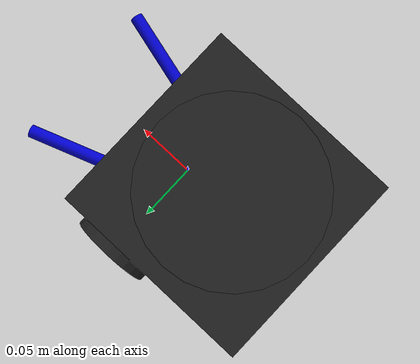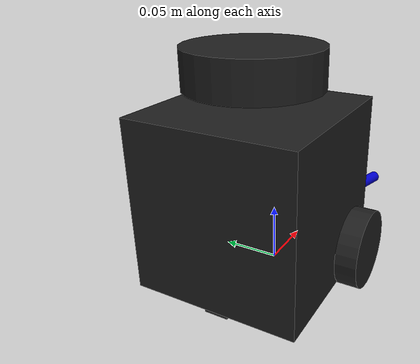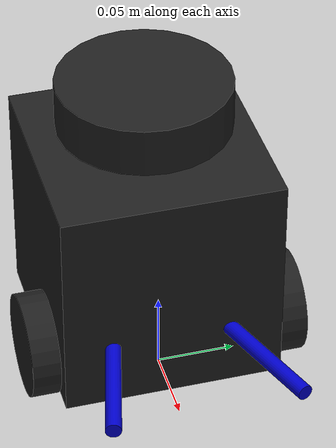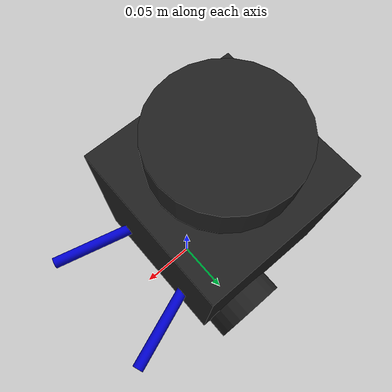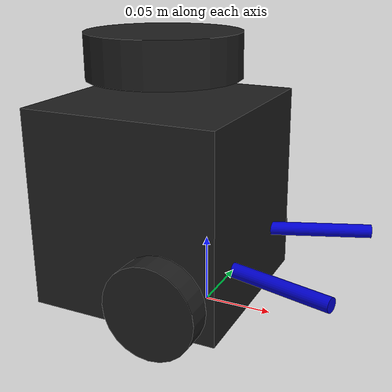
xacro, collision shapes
<?xml version="1.0" ?>
<robot name="turtlebot3_burger" xmlns:xacro="http://ros.org/wiki/xacro">
  <xacro:include filename="$(find turtlebot3_description)/urdf/common_properties.xacro"/>
  <xacro:include filename="$(find turtlebot3_description)/urdf/turtlebot3_burger.gazebo.xacro"/>

  <link name="base_footprint"/>

  <joint name="base_joint" type="fixed">
    <parent link="base_footprint"/>
    <child link="base_link"/>
    <origin xyz="0.0 0.0 0.010" rpy="0 0 0"/>
  </joint>

  <link name="base_link">
    <visual>
      <origin xyz="-0.032 0 0.0" rpy="0 0 0"/>
      <geometry>
        <mesh filename="package://turtlebot3_description/meshes/bases/burger_base.stl" scale="0.001 0.001 0.001"/>
      </geometry>
      <material name="light_black"/>
    </visual>

    <collision>
      <origin xyz="-0.032 0 0.070" rpy="0 0 0"/>
      <geometry>
        <box size="0.140 0.140 0.143"/>
      </geometry>
    </collision>

    <inertial>
      <origin xyz="0 0 0" rpy="0 0 0"/>
      <mass value="8.2573504e-01"/>
      <inertia ixx="2.2124416e-03" ixy="-1.2294101e-05" ixz="3.4938785e-05"
               iyy="2.1193702e-03" iyz="-5.0120904e-06"
               izz="2.0064271e-03" />
    </inertial>
  </link>

  <joint name="wheel_left_joint" type="continuous">
    <parent link="base_link"/>
    <child link="wheel_left_link"/>
    <origin xyz="0.0 0.08 0.023" rpy="-1.57 0 0"/>
    <axis xyz="0 0 1"/>
  </joint>

  <link name="wheel_left_link">
    <visual>
      <origin xyz="0 0 0" rpy="1.57 0 0"/>
      <geometry>
        <mesh filename="package://turtlebot3_description/meshes/wheels/left_tire.stl" scale="0.001 0.001 0.001"/>
      </geometry>
      <material name="dark"/>
    </visual>

    <collision>
      <origin xyz="0 0 0" rpy="0 0 0"/>
      <geometry>
        <cylinder length="0.018" radius="0.033"/>
      </geometry>
    </collision>

    <inertial>
      <origin xyz="0 0 0" />
      <mass value="2.8498940e-02" />
      <inertia ixx="1.1175580e-05" ixy="-4.2369783e-11" ixz="-5.9381719e-09"
               iyy="1.1192413e-05" iyz="-1.4400107e-11"
               izz="2.0712558e-05" />
      </inertial>
  </link>

  <joint name="wheel_right_joint" type="continuous">
    <parent link="base_link"/>
    <child link="wheel_right_link"/>
    <origin xyz="0.0 -0.08 0.023" rpy="-1.57 0 0"/>
    <axis xyz="0 0 1"/>
  </joint>

  <link name="wheel_right_link">
    <visual>
      <origin xyz="0 0 0" rpy="1.57 0 0"/>
      <geometry>
        <mesh filename="package://turtlebot3_description/meshes/wheels/right_tire.stl" scale="0.001 0.001 0.001"/>
      </geometry>
      <material name="dark"/>
    </visual>

    <collision>
      <origin xyz="0 0 0" rpy="0 0 0"/>
      <geometry>
        <cylinder length="0.018" radius="0.033"/>
      </geometry>
    </collision>

    <inertial>
      <origin xyz="0 0 0" />
      <mass value="2.8498940e-02" />
      <inertia ixx="1.1175580e-05" ixy="-4.2369783e-11" ixz="-5.9381719e-09"
               iyy="1.1192413e-05" iyz="-1.4400107e-11"
               izz="2.0712558e-05" />
      </inertial>
  </link>

  <joint name="caster_back_joint" type="fixed">
    <parent link="base_link"/>
    <child link="caster_back_link"/>
    <origin xyz="-0.081 0 -0.004" rpy="-1.57 0 0"/>
  </joint>

  <link name="caster_back_link">
    <collision>
      <origin xyz="0 0.001 0" rpy="0 0 0"/>
      <geometry>
        <box size="0.030 0.009 0.020"/>
      </geometry>
    </collision>

    <inertial>
      <origin xyz="0 0 0" />
      <mass value="0.005" />
      <inertia ixx="0.001" ixy="0.0" ixz="0.0"
               iyy="0.001" iyz="0.0"
               izz="0.001" />
    </inertial>
  </link>

  <joint name="imu_joint" type="fixed">
    <parent link="base_link"/>
    <child link="imu_link"/>
    <origin xyz="-0.032 0 0.068" rpy="0 0 0"/>
  </joint>

  <link name="imu_link"/>

  <joint name="scan_joint" type="fixed">
    <parent link="base_link"/>
    <child link="base_scan"/>
    <origin xyz="-0.032 0 0.172" rpy="0 0 0"/>
  </joint>

  <link name="base_scan">
    <visual>
      <origin xyz="0 0 0.0" rpy="0 0 0"/>
      <geometry>
        <mesh filename="package://turtlebot3_description/meshes/sensors/lds.stl" scale="0.001 0.001 0.001"/>
      </geometry>
      <material name="dark"/>
    </visual>

    <collision>
      <origin xyz="0 0 0" rpy="0 0 0"/>
      <geometry>
        <cylinder length="0.0315" radius="0.055"/>
      </geometry>
    </collision>

    <inertial>
      <mass value="0.114" />
      <origin xyz="0 0 0" />
      <inertia ixx="0.001" ixy="0.0" ixz="0.0"
               iyy="0.001" iyz="0.0"
               izz="0.001" />
    </inertial>
  </link>

  <joint name="gripper1_joint" type="fixed">
    <parent link="base_link"/>
    <child link="gripper1_link"/>
    <origin xyz="0.06 0.045 0.04" rpy="1.57 0 1.92"/>
  </joint>

  <link name="gripper1_link" type="fixed">
    <visual>
      <geometry>
        <cylinder length="0.1" radius="0.005"/>
      </geometry>
      <material name="blue">
        <color rgba="0 0 .8 1"/>
      </material>
    </visual>
    <collision>
      <geometry>
        <cylinder length="0.1" radius="0.005"/>
      </geometry>
    </collision>
  </link>

  <joint name="gripper2_joint" type="fixed">
    <parent link="base_link"/>
    <child link="gripper2_link"/>
    <origin xyz="0.06 -0.045 0.04" rpy="1.57 0 1.32"/>
  </joint>

  <link name="gripper2_link" type="fixed">
    <visual>
      <geometry>
        <cylinder length="0.1" radius="0.005"/>
      </geometry>
      <material name="blue">
        <color rgba="0 0 .8 1"/>
      </material>
    </visual>
    <collision>
      <geometry>
        <cylinder length="0.1" radius="0.005"/>
      </geometry>
    </collision>
  </link>

  <joint name="scan2_joint" type="fixed">
    <parent link="base_link"/>
    <child link="second_scan"/>
    <origin xyz="-0.032 0 0.06	" rpy="0 0 0"/>
  </joint>

  <link name="second_scan">
    <visual>
      <origin xyz="0 0 0.0" rpy="0 0 0"/>
      <geometry>
        <mesh filename="package://turtlebot3_description/meshes/sensors/lds.stl" scale="0.001 0.001 0.001"/>
      </geometry>
      <material name="dark"/>
    </visual>

    <collision>
      <origin xyz="0 0 0" rpy="0 0 0"/>
      <geometry>
        <cylinder length="0.0315" radius="0.055"/>
      </geometry>
    </collision>

    <inertial>
      <mass value="0.114" />
      <origin xyz="0 0 0" />
      <inertia ixx="0.001" ixy="0.0" ixz="0.0"
               iyy="0.001" iyz="0.0"
               izz="0.001" />
    </inertial>
  </link>

</robot>
